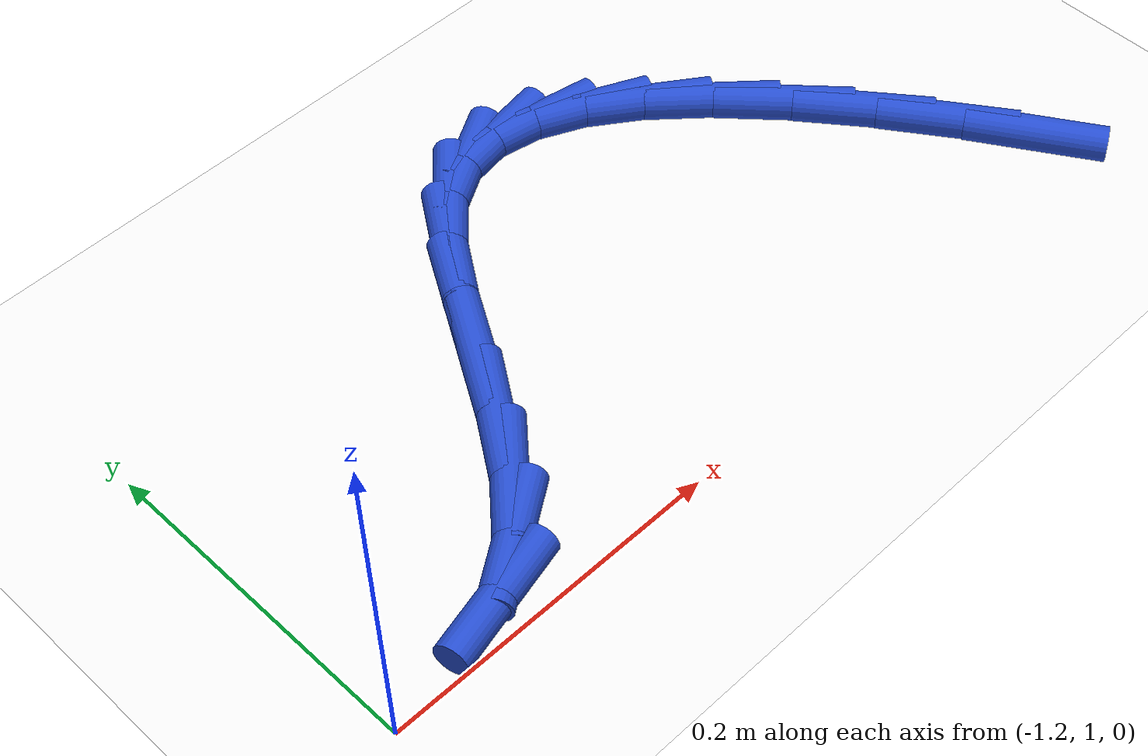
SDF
<sdf version="1.6">
 <world name="default">
  <model name="ground_plane">
   <static>1</static>
   <link name="link">
    <collision name="collision">
     <geometry><plane><normal>0 0 1</normal><size>100 100</size></plane></geometry>
     <surface><friction><ode><mu>100</mu><mu2>50</mu2></ode></friction></surface>
    </collision>
    <visual name="visual">
     <cast_shadows>0</cast_shadows>
     <geometry><plane><normal>0 0 1</normal><size>100 100</size></plane></geometry>
     <material>
      <script><uri>file://media/materials/scripts/gazebo.material</uri><name>Gazebo/WhiteGlow</name></script>
     </material>
    </visual>
   </link>
  </model>
  <model name="line">
   <link name="link_34">
    <pose>-0.6969430589075 1.0279623300103768 0.01 0 1.57 -1.0139113595048148</pose>
    <collision name="collision">
     <geometry><cylinder><radius>0.01</radius><length>0.08</length></cylinder></geometry>
    </collision>
    <visual name="visual">
     <material>
      <script><name>Gazebo/Blue</name><uri>file://media/materials/scripts/gazebo.material</uri></script>
     </material>
     <geometry><cylinder><radius>0.01</radius><length>0.08</length></cylinder></geometry>
    </visual>
   </link>
   <link name="link_35">
    <pose>-0.7230899848934266 1.0699574274178836 0.01 0 1.57 -0.9657440058951108</pose>
    <collision name="collision">
     <geometry><cylinder><radius>0.01</radius><length>0.08</length></cylinder></geometry>
    </collision>
    <visual name="visual">
     <material>
      <script><name>Gazebo/Blue</name><uri>file://media/materials/scripts/gazebo.material</uri></script>
     </material>
     <geometry><cylinder><radius>0.01</radius><length>0.08</length></cylinder></geometry>
    </visual>
   </link>
   <link name="link_36">
    <pose>-0.7502243113862943 1.1091927165996673 0.01 0 1.57 -0.9080720612517078</pose>
    <collision name="collision">
     <geometry><cylinder><radius>0.01</radius><length>0.08</length></cylinder></geometry>
    </collision>
    <visual name="visual">
     <material>
      <script><name>Gazebo/Blue</name><uri>file://media/materials/scripts/gazebo.material</uri></script>
     </material>
     <geometry><cylinder><radius>0.01</radius><length>0.08</length></cylinder></geometry>
    </visual>
   </link>
   <link name="link_37">
    <pose>-0.7780241138938074 1.1448115985422136 0.01 0 1.57 -0.8359968784538038</pose>
    <collision name="collision">
     <geometry><cylinder><radius>0.01</radius><length>0.08</length></cylinder></geometry>
    </collision>
    <visual name="visual">
     <material>
      <script><name>Gazebo/Blue</name><uri>file://media/materials/scripts/gazebo.material</uri></script>
     </material>
     <geometry><cylinder><radius>0.01</radius><length>0.08</length></cylinder></geometry>
    </visual>
   </link>
   <link name="link_38">
    <pose>-0.8061674679236698 1.1759574742320058 0.01 0 1.57 -0.7419158405569487</pose>
    <collision name="collision">
     <geometry><cylinder><radius>0.01</radius><length>0.08</length></cylinder></geometry>
    </collision>
    <visual name="visual">
     <material>
      <script><name>Gazebo/Blue</name><uri>file://media/materials/scripts/gazebo.material</uri></script>
     </material>
     <geometry><cylinder><radius>0.01</radius><length>0.08</length></cylinder></geometry>
    </visual>
   </link>
   <link name="link_39">
    <pose>-0.834332448983585 1.201773744655528 0.01 0 1.57 -0.6137252448125574</pose>
    <collision name="collision">
     <geometry><cylinder><radius>0.01</radius><length>0.08</length></cylinder></geometry>
    </collision>
    <visual name="visual">
     <material>
      <script><name>Gazebo/Blue</name><uri>file://media/materials/scripts/gazebo.material</uri></script>
     </material>
     <geometry><cylinder><radius>0.01</radius><length>0.08</length></cylinder></geometry>
    </visual>
   </link>
   <link name="link_40">
    <pose>-0.8621971325812576 1.2214038107992655 0.01 0 1.57 -0.43282587516805054</pose>
    <collision name="collision">
     <geometry><cylinder><radius>0.01</radius><length>0.08</length></cylinder></geometry>
    </collision>
    <visual name="visual">
     <material>
      <script><name>Gazebo/Blue</name><uri>file://media/materials/scripts/gazebo.material</uri></script>
     </material>
     <geometry><cylinder><radius>0.01</radius><length>0.08</length></cylinder></geometry>
    </visual>
   </link>
   <link name="link_41">
    <pose>-0.8894395942243916 1.233991073649703 0.01 0 1.57 -0.17640419280180014</pose>
    <collision name="collision">
     <geometry><cylinder><radius>0.01</radius><length>0.08</length></cylinder></geometry>
    </collision>
    <visual name="visual">
     <material>
      <script><name>Gazebo/Blue</name><uri>file://media/materials/scripts/gazebo.material</uri></script>
     </material>
     <geometry><cylinder><radius>0.01</radius><length>0.08</length></cylinder></geometry>
    </visual>
   </link>
   <link name="link_42">
    <pose>-0.9157379094206898 1.2386789341933233 0.01 0 1.57 0.16110751501398704</pose>
    <collision name="collision">
     <geometry><cylinder><radius>0.01</radius><length>0.08</length></cylinder></geometry>
    </collision>
    <visual name="visual">
     <material>
      <script><name>Gazebo/Blue</name><uri>file://media/materials/scripts/gazebo.material</uri></script>
     </material>
     <geometry><cylinder><radius>0.01</radius><length>0.08</length></cylinder></geometry>
    </visual>
   </link>
   <link name="link_43">
    <pose>-0.9407701536778574 1.2346107934166126 0.01 0 1.57 0.5282313090634218</pose>
    <collision name="collision">
     <geometry><cylinder><radius>0.01</radius><length>0.08</length></cylinder></geometry>
    </collision>
    <visual name="visual">
     <material>
      <script><name>Gazebo/Blue</name><uri>file://media/materials/scripts/gazebo.material</uri></script>
     </material>
     <geometry><cylinder><radius>0.01</radius><length>0.08</length></cylinder></geometry>
    </visual>
   </link>
   <link name="link_44">
    <pose>-0.9642144025035979 1.2209300523060538 0.01 0 1.57 0.8261475906959247</pose>
    <collision name="collision">
     <geometry><cylinder><radius>0.01</radius><length>0.08</length></cylinder></geometry>
    </collision>
    <visual name="visual">
     <material>
      <script><name>Gazebo/Blue</name><uri>file://media/materials/scripts/gazebo.material</uri></script>
     </material>
     <geometry><cylinder><radius>0.01</radius><length>0.08</length></cylinder></geometry>
    </visual>
   </link>
   <link name="link_45">
    <pose>-0.9859157041550654 1.1973839225008271 0.01 0 1.57 0.9838684503298167</pose>
    <collision name="collision">
     <geometry><cylinder><radius>0.01</radius><length>0.08</length></cylinder></geometry>
    </collision>
    <visual name="visual">
     <material>
      <script><name>Gazebo/Blue</name><uri>file://media/materials/scripts/gazebo.material</uri></script>
     </material>
     <geometry><cylinder><radius>0.01</radius><length>0.08</length></cylinder></geometry>
    </visual>
   </link>
   <link name="link_46">
    <pose>-1.0064788983484243 1.1664671907880781 0.01 0 1.57 1.046511109402985</pose>
    <collision name="collision">
     <geometry><cylinder><radius>0.01</radius><length>0.08</length></cylinder></geometry>
    </collision>
    <visual name="visual">
     <material>
      <script><name>Gazebo/Blue</name><uri>file://media/materials/scripts/gazebo.material</uri></script>
     </material>
     <geometry><cylinder><radius>0.01</radius><length>0.08</length></cylinder></geometry>
    </visual>
   </link>
   <link name="link_47">
    <pose>-1.0267248236877158 1.1314557440440376 0.01 0 1.57 1.0458814504760674</pose>
    <collision name="collision">
     <geometry><cylinder><radius>0.01</radius><length>0.08</length></cylinder></geometry>
    </collision>
    <visual name="visual">
     <material>
      <script><name>Gazebo/Blue</name><uri>file://media/materials/scripts/gazebo.material</uri></script>
     </material>
     <geometry><cylinder><radius>0.01</radius><length>0.08</length></cylinder></geometry>
    </visual>
   </link>
   <link name="link_48">
    <pose>-1.0474743338433463 1.0956255236282668 0.01 0 1.57 0.9864276590710491</pose>
    <collision name="collision">
     <geometry><cylinder><radius>0.01</radius><length>0.08</length></cylinder></geometry>
    </collision>
    <visual name="visual">
     <material>
      <script><name>Gazebo/Blue</name><uri>file://media/materials/scripts/gazebo.material</uri></script>
     </material>
     <geometry><cylinder><radius>0.01</radius><length>0.08</length></cylinder></geometry>
    </visual>
   </link>
   <link name="link_49">
    <pose>-1.0695482824857214 1.0622524709003276 0.01 0 1.57 0.8512641190242259</pose>
    <collision name="collision">
     <geometry><cylinder><radius>0.01</radius><length>0.08</length></cylinder></geometry>
    </collision>
    <visual name="visual">
     <material>
      <script><name>Gazebo/Blue</name><uri>file://media/materials/scripts/gazebo.material</uri></script>
     </material>
     <geometry><cylinder><radius>0.01</radius><length>0.08</length></cylinder></geometry>
    </visual>
   </link>
   <link name="link_50">
    <pose>-1.093767523285248 1.0346125272197821 0.01 0 1.57 0.6008503914331939</pose>
    <collision name="collision">
     <geometry><cylinder><radius>0.01</radius><length>0.08</length></cylinder></geometry>
    </collision>
    <visual name="visual">
     <material>
      <script><name>Gazebo/Blue</name><uri>file://media/materials/scripts/gazebo.material</uri></script>
     </material>
     <geometry><cylinder><radius>0.01</radius><length>0.08</length></cylinder></geometry>
    </visual>
   </link>
   <link name="link_51">
    <pose>-1.1209525520797299 1.015980290523162 0.01 0 1.57 0.24369115881245274</pose>
    <collision name="collision">
     <geometry><cylinder><radius>0.01</radius><length>0.08</length></cylinder></geometry>
    </collision>
    <visual name="visual">
     <material>
      <script><name>Gazebo/Blue</name><uri>file://media/materials/scripts/gazebo.material</uri></script>
     </material>
     <geometry><cylinder><radius>0.01</radius><length>0.08</length></cylinder></geometry>
    </visual>
   </link>
  </model>
 </world>
</sdf>
